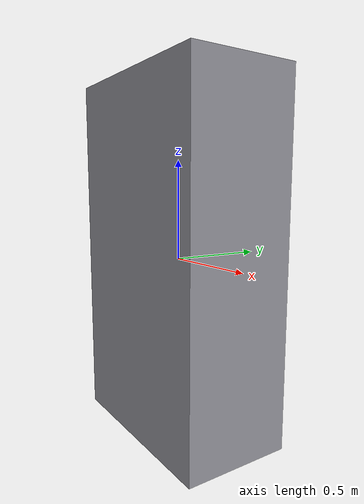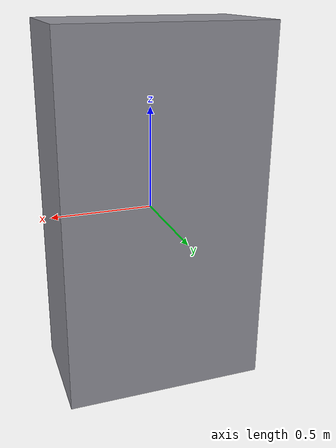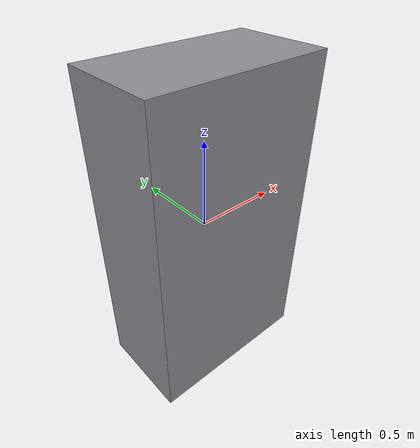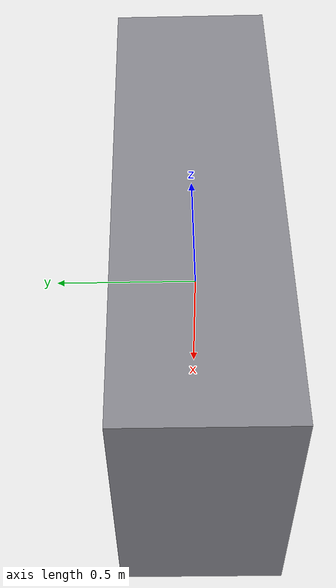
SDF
<?xml version="1.0"?>
<sdf version="1.6">
  <model name="MetalCabinet">
    <static>true</static>
    <link name="link">
      <collision name="col">
        <geometry>
          <box>
            <size>1.0 0.55 1.8</size>
          </box>
        </geometry>
      </collision>
      <visual name="vis">
        <geometry>
          <box>
            <size>1.0 0.55 1.8</size>
          </box>
        </geometry>
        <material>
          <ambient>0.55 0.55 0.58 1</ambient>
          <diffuse>0.55 0.55 0.58 1</diffuse>
        </material>
      </visual>
    </link>
  </model>
</sdf>
